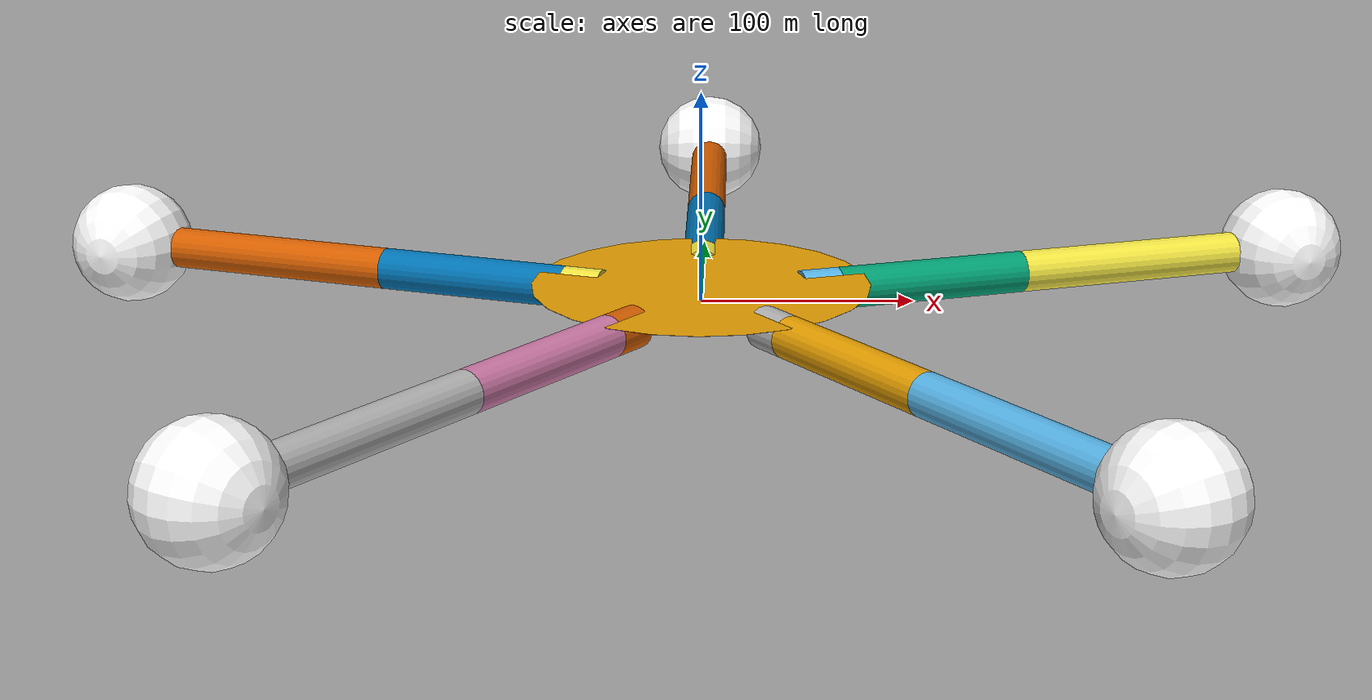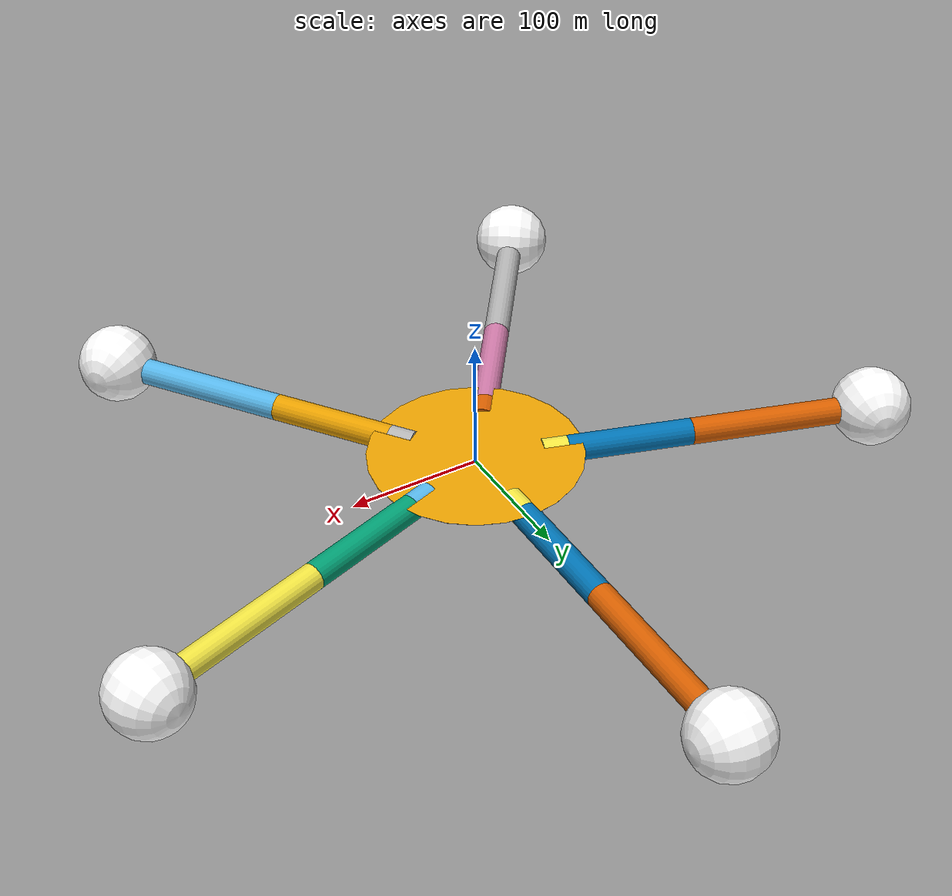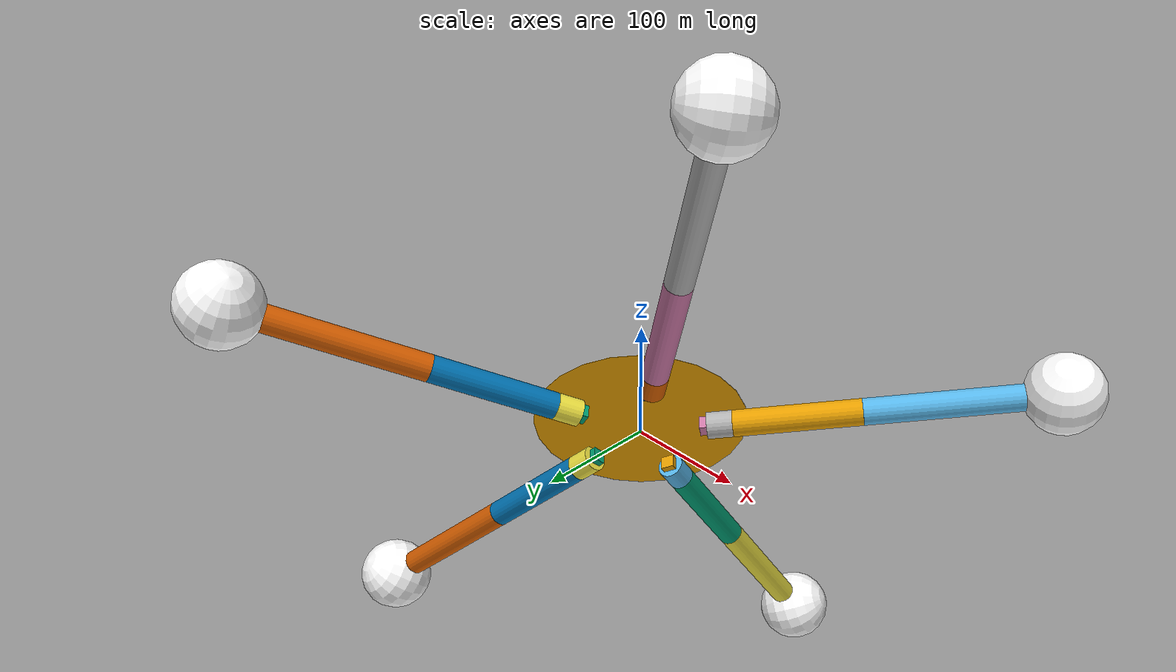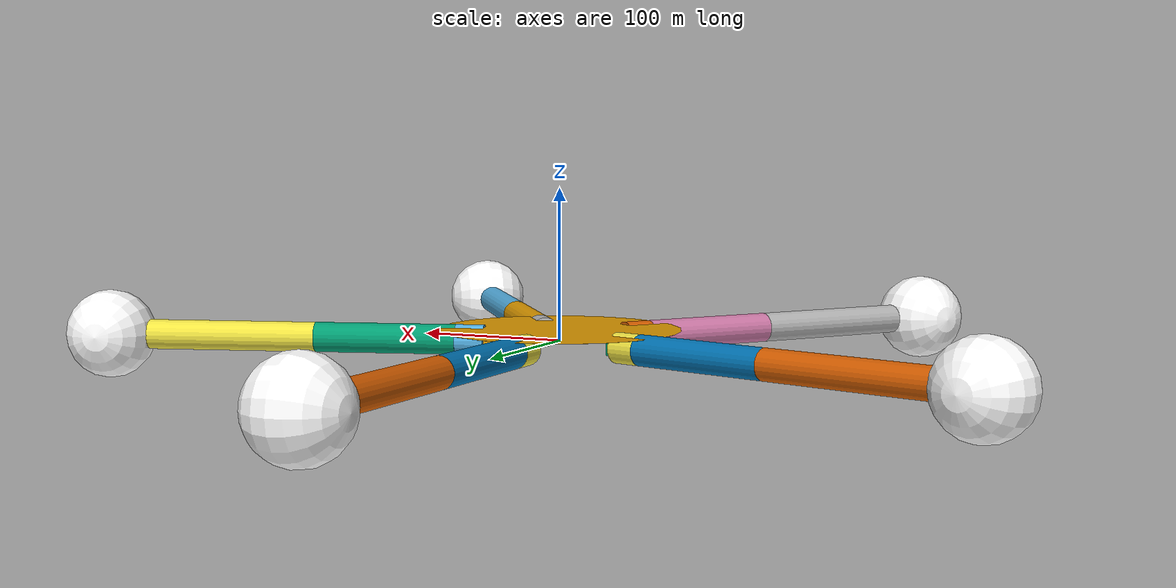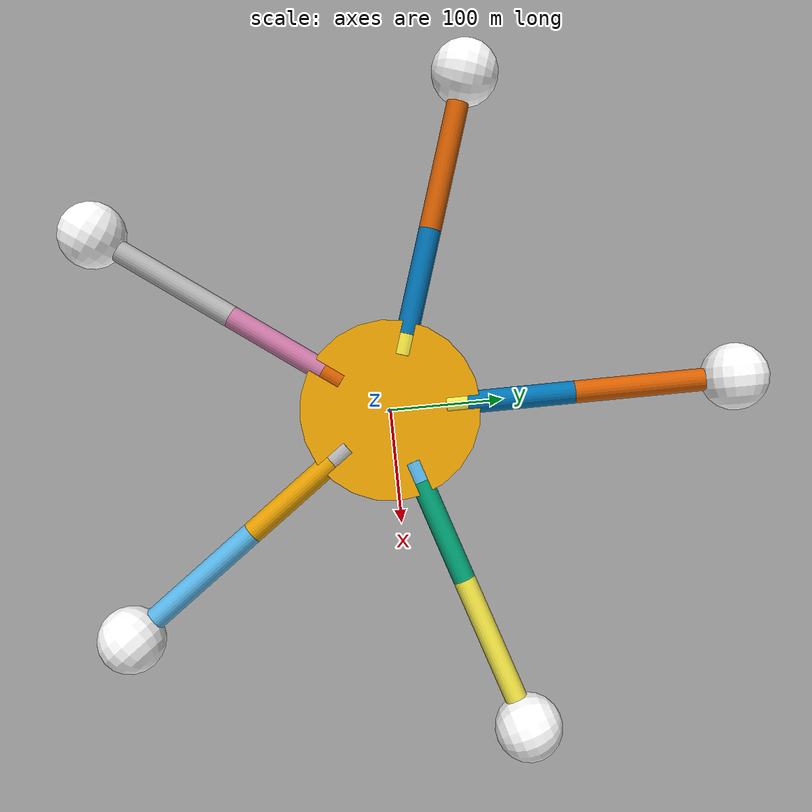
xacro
<?xml version="1.0" ?>

<robot name="periaxis_robot" xmlns:xacro="http://www.ros.org/wiki/xacro">
    <xacro:property name="base_radius" value="50" />
    <xacro:property name="angle_between_legs" value="${(2*pi)/5}" />
    <xacro:property name="L1" value="19" />
    <xacro:property name="L2" value="95" />
    <xacro:property name="L3" value="143" />

    <material name="white">
    <color rgba="1 1 1 1"/>
    </material>

    <!-- World origin at centre of circle legs are radialy mounted from -->
    <link name="world_origin">
        <visual>
            <origin rpy="0 0 0" xyz="0 0 8"/>
            <geometry>
                <cylinder radius="80" length="0.1"/>
            </geometry>
        </visual>
    </link>

<!-- macro function for generating each leg -->
<xacro:macro name="leg" params="prefix legZAngle_rad">

    <!-- Fixed rotation from world frame to legs angle in circle, z axis now aligned with leg final position -->
    <joint name="L${prefix}_FixedLegRotation" type="fixed">
        <origin xyz="0 0 0" rpy="-1.57 0 ${legZAngle_rad}"/>
        <parent link="world_origin"/>
        <child link="L${prefix}_legPoition"/>
    </joint>

    <!-- Intermediate pseudo link prior to final translation to radius distance -->
    <link name="L${prefix}_legPoition">
        <visual>
            <origin rpy="0 0 0" xyz="0 0 0"/>
            <geometry>
                <box size="0 0 0"/>>
            </geometry>
        </visual>
    </link>

    <!-- Fixed translation to leg # base; world_frame to base_frame -->
    <joint name="L${prefix}_FixedLegTranslation" type="fixed">
        <origin xyz="0 0 ${base_radius}" rpy="0 0 0"/>
        <parent link="L${prefix}_legPoition"/>
        <child link="L${prefix}_base"/>
    </joint>

    <!-- Leg# servo 1 fixed base frame -->
    <link name="L${prefix}_base">
        <visual>
            <origin rpy="0 0 0" xyz="0 0 -0.5"/>
            <geometry>
                <box size="10 10 10"/>
            </geometry>
        </visual>
    </link>

    <!-- Leg# servo joint 1; base frame to frame 0 (rotating finger plane) -->
    <joint name="L${prefix}_joint1" type="revolute">
        <axis xyz="0 0 1" />
        <limit effort="1000.0" lower="${-pi}" upper="${pi}" velocity="0.5" />
        <origin xyz="0 0 0" rpy="0 0 0" />
        <parent link="L${prefix}_base"/>
        <child link="L${prefix}_link1"/>
    </joint>

    <!-- Leg# servo 1 rotating frame, link 1 (frame 0) -->
    <link name="L${prefix}_link1">
        <visual>
            <origin rpy="0 0 0" xyz="0 0 ${L1/2}"/>
            <geometry>
                <cylinder radius="10" length="${L1}"/>
            </geometry>
        </visual>
    </link>

    <!-- Leg# servo joint 2; frame 0 to frame 1 -->
    <joint name="L${prefix}_joint2" type="revolute">
        <axis xyz="0 0 1" />
        <limit effort="1000.0" lower="${-pi/2}" upper="${pi/2}" velocity="0.5" />
        <origin xyz="0 0 ${L1}" rpy="1.57 0 -1.57" />
        <parent link="L${prefix}_link1"/>
        <child link="L${prefix}_link2"/>
    </joint>

    <!-- Leg# servo 2 (frame 1) -->
    <link name="L${prefix}_link2">
        <visual>
            <origin rpy="${-pi/2} 0 0" xyz="0 ${L2/2} 0"/>
            <geometry>
                <cylinder radius="10" length="${L2}"/>
            </geometry>
        </visual>
    </link>

    <!-- Leg# servo joint 3; frame 1 to frame 2 -->
    <joint name="L${prefix}_joint3" type="revolute">
        <axis xyz="0 0 1" />
        <limit effort="1000.0" lower="-3.14" upper="3.14" velocity="0.5" />
        <origin xyz="0 ${L2} 0" rpy="0 0 1.57" />
        <parent link="L${prefix}_link2"/>
        <child link="L${prefix}_link3"/>
    </joint>

    <!-- Leg# servo 2 (frame 2) -->
    <link name="L${prefix}_link3">
        <visual>
            <origin rpy="0 ${-pi/2} 0" xyz="${L3/2} 0 0"/>
            <geometry>
                <cylinder radius="10" length="${L3}"/>
            </geometry>
        </visual>
    </link>

    <!-- Leg# servo 3 (frame 3) fixed frame to finger end -->
    <joint name="L${prefix}_fingerFixedJoint" type="fixed">
        <origin xyz="${L3} 0 0" rpy="0 0 0"/>
        <parent link="L${prefix}_link3"/>
        <child link="L${prefix}_fingerTip"/>
    </joint>

    <!-- Leg# servo 3 (frame 3) -->
    <link name="L${prefix}_fingerTip">
        <visual>
            <origin rpy="0 0 0" xyz="0 0 0"/>
            <geometry>
                <sphere radius="30"/>
            </geometry>
            <material name="white"/>
        </visual>
    </link>

</xacro:macro>

<!-- Generate actual leg models using macro function above -->
<xacro:leg prefix="1" legZAngle_rad="0" />
<xacro:leg prefix="2" legZAngle_rad="-1.257" />
<xacro:leg prefix="3" legZAngle_rad="-2.513" />
<xacro:leg prefix="4" legZAngle_rad="-3.77" />
<xacro:leg prefix="5" legZAngle_rad="-5.027" />

</robot>
